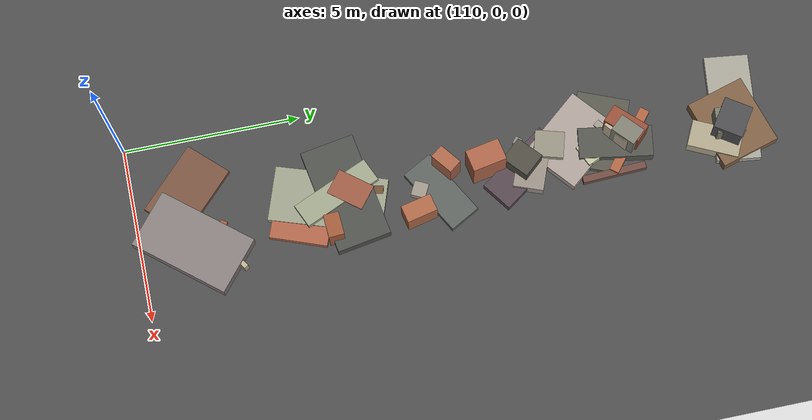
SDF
<sdf version="1.6">
 <world name="navitas_arena">
  <model name="ground_plane">
   <static>true</static>
   <link name="link">
    <collision name="collision">
     <geometry><plane><normal>0 0 1</normal><size>400 400</size></plane></geometry>
     <surface><friction><ode><mu>0.800</mu><mu2>0.800</mu2></ode></friction></surface>
    </collision>
    <visual name="visual">
     <cast_shadows>false</cast_shadows>
     <geometry><plane><normal>0 0 1</normal><size>400 400</size></plane></geometry>
     <material>
      <specular>0.04 0.04 0.04 1</specular>
      <script>
       <uri>file://media/materials/scripts/navitas_asphalt.material</uri>
       <name>Navitas/RealArenaAsphalt</name>
      </script>
     </material>
    </visual>
   </link>
  </model>
  <model name="deb_zor_14">
   <static>true</static>
   <pose>112.383 13.168 0.000 0 0 0</pose>
   <link name="link">
    <collision name="col_0">
     <pose>0.264 0.861 0.137 0.000 0.000 2.471</pose>
     <geometry><box><size>2.047 0.278 0.273</size></box></geometry>
    </collision>
    <visual name="vis_0">
     <pose>0.264 0.861 0.137 0.000 0.000 2.471</pose>
     <geometry><box><size>2.047 0.278 0.273</size></box></geometry>
     <material>
      <ambient>0.64 0.37 0.25 1</ambient>
      <diffuse>0.69 0.40 0.27 1</diffuse>
      <specular>0.05 0.05 0.045 1</specular>
     </material>
    </visual>
    <collision name="col_1">
     <pose>0.555 0.408 0.092 0.000 0.000 1.013</pose>
     <geometry><box><size>0.195 0.268 0.185</size></box></geometry>
    </collision>
    <visual name="vis_1">
     <pose>0.555 0.408 0.092 0.000 0.000 1.013</pose>
     <geometry><box><size>0.195 0.268 0.185</size></box></geometry>
     <material>
      <ambient>0.44 0.42 0.43 1</ambient>
      <diffuse>0.47 0.46 0.46 1</diffuse>
      <specular>0.05 0.05 0.045 1</specular>
     </material>
    </visual>
    <collision name="col_2">
     <pose>-0.056 -0.687 0.148 0.000 0.000 2.267</pose>
     <geometry><box><size>2.184 1.715 0.297</size></box></geometry>
    </collision>
    <visual name="vis_2">
     <pose>-0.056 -0.687 0.148 0.000 0.000 2.267</pose>
     <geometry><box><size>2.184 1.715 0.297</size></box></geometry>
     <material>
      <ambient>0.63 0.59 0.56 1</ambient>
      <diffuse>0.68 0.63 0.60 1</diffuse>
      <specular>0.05 0.05 0.045 1</specular>
     </material>
    </visual>
    <collision name="col_3">
     <pose>-0.182 0.048 0.084 0.000 0.000 2.754</pose>
     <geometry><box><size>2.208 1.504 0.168</size></box></geometry>
    </collision>
    <visual name="vis_3">
     <pose>-0.182 0.048 0.084 0.000 0.000 2.754</pose>
     <geometry><box><size>2.208 1.504 0.168</size></box></geometry>
     <material>
      <ambient>0.32 0.33 0.29 1</ambient>
      <diffuse>0.35 0.35 0.31 1</diffuse>
      <specular>0.05 0.05 0.045 1</specular>
     </material>
    </visual>
    <collision name="col_4">
     <pose>-0.159 0.553 0.104 0.000 0.000 1.071</pose>
     <geometry><box><size>1.217 0.290 0.208</size></box></geometry>
    </collision>
    <visual name="vis_4">
     <pose>-0.159 0.553 0.104 0.000 0.000 1.071</pose>
     <geometry><box><size>1.217 0.290 0.208</size></box></geometry>
     <material>
      <ambient>0.43 0.35 0.27 1</ambient>
      <diffuse>0.47 0.38 0.29 1</diffuse>
      <specular>0.05 0.05 0.045 1</specular>
     </material>
    </visual>
    <collision name="col_5">
     <pose>-0.014 0.350 0.173 0.000 0.000 0.661</pose>
     <geometry><box><size>1.015 0.217 0.345</size></box></geometry>
    </collision>
    <visual name="vis_5">
     <pose>-0.014 0.350 0.173 0.000 0.000 0.661</pose>
     <geometry><box><size>1.015 0.217 0.345</size></box></geometry>
     <material>
      <ambient>0.57 0.56 0.52 1</ambient>
      <diffuse>0.62 0.61 0.56 1</diffuse>
      <specular>0.05 0.05 0.045 1</specular>
     </material>
    </visual>
    <collision name="col_6">
     <pose>1.075 0.239 0.104 0.000 0.000 1.615</pose>
     <geometry><box><size>1.824 0.199 0.208</size></box></geometry>
    </collision>
    <visual name="vis_6">
     <pose>1.075 0.239 0.104 0.000 0.000 1.615</pose>
     <geometry><box><size>1.824 0.199 0.208</size></box></geometry>
     <material>
      <ambient>0.41 0.28 0.25 1</ambient>
      <diffuse>0.44 0.30 0.26 1</diffuse>
      <specular>0.05 0.05 0.045 1</specular>
     </material>
    </visual>
   </link>
  </model>
  <model name="deb_zor_15">
   <static>true</static>
   <pose>112.742 5.090 0.000 0 0 0</pose>
   <link name="link">
    <collision name="col_0">
     <pose>-0.135 0.305 0.099 0.000 0.000 1.245</pose>
     <geometry><box><size>3.197 1.578 0.199</size></box></geometry>
    </collision>
    <visual name="vis_0">
     <pose>-0.135 0.305 0.099 0.000 0.000 1.245</pose>
     <geometry><box><size>3.197 1.578 0.199</size></box></geometry>
     <material>
      <ambient>0.57 0.58 0.50 1</ambient>
      <diffuse>0.61 0.63 0.54 1</diffuse>
      <specular>0.05 0.05 0.045 1</specular>
     </material>
    </visual>
    <collision name="col_1">
     <pose>-0.225 1.238 0.119 0.000 0.000 1.358</pose>
     <geometry><box><size>1.288 0.223 0.238</size></box></geometry>
    </collision>
    <visual name="vis_1">
     <pose>-0.225 1.238 0.119 0.000 0.000 1.358</pose>
     <geometry><box><size>1.288 0.223 0.238</size></box></geometry>
     <material>
      <ambient>0.41 0.29 0.19 1</ambient>
      <diffuse>0.44 0.31 0.21 1</diffuse>
      <specular>0.05 0.05 0.045 1</specular>
     </material>
    </visual>
    <collision name="col_2">
     <pose>-0.236 0.566 0.182 0.000 0.000 1.985</pose>
     <geometry><box><size>2.353 0.710 0.364</size></box></geometry>
    </collision>
    <visual name="vis_2">
     <pose>-0.236 0.566 0.182 0.000 0.000 1.985</pose>
     <geometry><box><size>2.353 0.710 0.364</size></box></geometry>
     <material>
      <ambient>0.58 0.60 0.51 1</ambient>
      <diffuse>0.63 0.65 0.55 1</diffuse>
      <specular>0.05 0.05 0.045 1</specular>
     </material>
    </visual>
    <collision name="col_3">
     <pose>-0.244 0.966 0.187 0.000 0.000 0.905</pose>
     <geometry><box><size>1.088 0.755 0.374</size></box></geometry>
    </collision>
    <visual name="vis_3">
     <pose>-0.244 0.966 0.187 0.000 0.000 0.905</pose>
     <geometry><box><size>1.088 0.755 0.374</size></box></geometry>
     <material>
      <ambient>0.57 0.34 0.25 1</ambient>
      <diffuse>0.62 0.36 0.27 1</diffuse>
      <specular>0.05 0.05 0.045 1</specular>
     </material>
    </visual>
    <collision name="col_4">
     <pose>0.791 0.321 0.415 0.000 0.000 3.202</pose>
     <geometry><box><size>0.668 0.436 0.831</size></box></geometry>
    </collision>
    <visual name="vis_4">
     <pose>0.791 0.321 0.415 0.000 0.000 3.202</pose>
     <geometry><box><size>0.668 0.436 0.831</size></box></geometry>
     <material>
      <ambient>0.58 0.34 0.21 1</ambient>
      <diffuse>0.63 0.36 0.23 1</diffuse>
      <specular>0.05 0.05 0.045 1</specular>
     </material>
    </visual>
    <collision name="col_5">
     <pose>0.494 -0.596 0.089 0.000 0.000 1.213</pose>
     <geometry><box><size>1.643 0.838 0.179</size></box></geometry>
    </collision>
    <visual name="vis_5">
     <pose>0.494 -0.596 0.089 0.000 0.000 1.213</pose>
     <geometry><box><size>1.643 0.838 0.179</size></box></geometry>
     <material>
      <ambient>0.64 0.37 0.27 1</ambient>
      <diffuse>0.69 0.40 0.29 1</diffuse>
      <specular>0.05 0.05 0.045 1</specular>
     </material>
    </visual>
    <collision name="col_6">
     <pose>-0.188 0.810 0.171 0.000 0.000 3.310</pose>
     <geometry><box><size>3.066 1.551 0.341</size></box></geometry>
    </collision>
    <visual name="vis_6">
     <pose>-0.188 0.810 0.171 0.000 0.000 3.310</pose>
     <geometry><box><size>3.066 1.551 0.341</size></box></geometry>
     <material>
      <ambient>0.29 0.30 0.27 1</ambient>
      <diffuse>0.31 0.32 0.30 1</diffuse>
      <specular>0.05 0.05 0.045 1</specular>
     </material>
    </visual>
   </link>
  </model>
  <model name="deb_zor_86">
   <static>true</static>
   <pose>112.617 17.047 0.000 0 0 0</pose>
   <link name="link">
    <collision name="col_0">
     <pose>-0.094 0.372 0.067 0.000 0.000 1.864</pose>
     <geometry><box><size>0.237 0.280 0.135</size></box></geometry>
    </collision>
    <visual name="vis_0">
     <pose>-0.094 0.372 0.067 0.000 0.000 1.864</pose>
     <geometry><box><size>0.237 0.280 0.135</size></box></geometry>
     <material>
      <ambient>0.37 0.33 0.31 1</ambient>
      <diffuse>0.39 0.36 0.33 1</diffuse>
      <specular>0.05 0.05 0.045 1</specular>
     </material>
    </visual>
    <collision name="col_1">
     <pose>0.130 -0.058 0.186 0.000 0.000 3.426</pose>
     <geometry><box><size>2.047 1.721 0.372</size></box></geometry>
    </collision>
    <visual name="vis_1">
     <pose>0.130 -0.058 0.186 0.000 0.000 3.426</pose>
     <geometry><box><size>2.047 1.721 0.372</size></box></geometry>
     <material>
      <ambient>0.46 0.35 0.25 1</ambient>
      <diffuse>0.50 0.38 0.27 1</diffuse>
      <specular>0.05 0.05 0.045 1</specular>
     </material>
    </visual>
    <collision name="col_2">
     <pose>-0.227 -0.123 0.122 0.000 0.000 2.642</pose>
     <geometry><box><size>0.380 0.354 0.243</size></box></geometry>
    </collision>
    <visual name="vis_2">
     <pose>-0.227 -0.123 0.122 0.000 0.000 2.642</pose>
     <geometry><box><size>0.380 0.354 0.243</size></box></geometry>
     <material>
      <ambient>0.66 0.41 0.26 1</ambient>
      <diffuse>0.71 0.44 0.29 1</diffuse>
      <specular>0.05 0.05 0.045 1</specular>
     </material>
    </visual>
    <collision name="col_3">
     <pose>0.238 -0.176 0.571 0.000 0.000 2.547</pose>
     <geometry><box><size>0.932 0.833 1.142</size></box></geometry>
    </collision>
    <visual name="vis_3">
     <pose>0.238 -0.176 0.571 0.000 0.000 2.547</pose>
     <geometry><box><size>0.932 0.833 1.142</size></box></geometry>
     <material>
      <ambient>0.28 0.28 0.29 1</ambient>
      <diffuse>0.30 0.30 0.31 1</diffuse>
      <specular>0.05 0.05 0.045 1</specular>
     </material>
    </visual>
    <collision name="col_4">
     <pose>-0.331 0.069 0.123 0.000 0.000 3.019</pose>
     <geometry><box><size>3.096 1.258 0.245</size></box></geometry>
    </collision>
    <visual name="vis_4">
     <pose>-0.331 0.069 0.123 0.000 0.000 3.019</pose>
     <geometry><box><size>3.096 1.258 0.245</size></box></geometry>
     <material>
      <ambient>0.61 0.60 0.55 1</ambient>
      <diffuse>0.66 0.65 0.60 1</diffuse>
      <specular>0.05 0.05 0.045 1</specular>
     </material>
    </visual>
    <collision name="col_5">
     <pose>0.233 -0.441 0.066 0.000 0.000 2.379</pose>
     <geometry><box><size>0.403 0.197 0.133</size></box></geometry>
    </collision>
    <visual name="vis_5">
     <pose>0.233 -0.441 0.066 0.000 0.000 2.379</pose>
     <geometry><box><size>0.403 0.197 0.133</size></box></geometry>
     <material>
      <ambient>0.67 0.41 0.31 1</ambient>
      <diffuse>0.72 0.45 0.34 1</diffuse>
      <specular>0.05 0.05 0.045 1</specular>
     </material>
    </visual>
    <collision name="col_6">
     <pose>0.224 -0.241 0.486 0.000 0.000 1.474</pose>
     <geometry><box><size>0.787 0.740 0.973</size></box></geometry>
    </collision>
    <visual name="vis_6">
     <pose>0.224 -0.241 0.486 0.000 0.000 1.474</pose>
     <geometry><box><size>0.787 0.740 0.973</size></box></geometry>
     <material>
      <ambient>0.43 0.45 0.38 1</ambient>
      <diffuse>0.47 0.48 0.41 1</diffuse>
      <specular>0.05 0.05 0.045 1</specular>
     </material>
    </visual>
   </link>
  </model>
  <model name="deb_zor_92">
   <static>true</static>
   <pose>112.468 1.633 0.000 0 0 0</pose>
   <link name="link">
    <collision name="col_0">
     <pose>-0.841 -0.138 0.078 0.000 0.000 1.286</pose>
     <geometry><box><size>1.356 0.232 0.156</size></box></geometry>
    </collision>
    <visual name="vis_0">
     <pose>-0.841 -0.138 0.078 0.000 0.000 1.286</pose>
     <geometry><box><size>1.356 0.232 0.156</size></box></geometry>
     <material>
      <ambient>0.49 0.49 0.46 1</ambient>
      <diffuse>0.53 0.53 0.50 1</diffuse>
      <specular>0.05 0.05 0.045 1</specular>
     </material>
    </visual>
    <collision name="col_1">
     <pose>-0.951 -0.066 0.082 0.000 0.000 -0.763</pose>
     <geometry><box><size>2.179 1.390 0.163</size></box></geometry>
    </collision>
    <visual name="vis_1">
     <pose>-0.951 -0.066 0.082 0.000 0.000 -0.763</pose>
     <geometry><box><size>2.179 1.390 0.163</size></box></geometry>
     <material>
      <ambient>0.45 0.31 0.24 1</ambient>
      <diffuse>0.48 0.33 0.26 1</diffuse>
      <specular>0.05 0.05 0.045 1</specular>
     </material>
    </visual>
    <collision name="col_2">
     <pose>0.689 0.557 0.166 0.000 0.000 0.603</pose>
     <geometry><box><size>2.248 0.134 0.332</size></box></geometry>
    </collision>
    <visual name="vis_2">
     <pose>0.689 0.557 0.166 0.000 0.000 0.603</pose>
     <geometry><box><size>2.248 0.134 0.332</size></box></geometry>
     <material>
      <ambient>0.68 0.65 0.53 1</ambient>
      <diffuse>0.74 0.70 0.57 1</diffuse>
      <specular>0.05 0.05 0.045 1</specular>
     </material>
    </visual>
    <collision name="col_3">
     <pose>0.341 0.673 0.070 0.000 0.000 -0.598</pose>
     <geometry><box><size>0.494 0.190 0.139</size></box></geometry>
    </collision>
    <visual name="vis_3">
     <pose>0.341 0.673 0.070 0.000 0.000 -0.598</pose>
     <geometry><box><size>0.494 0.190 0.139</size></box></geometry>
     <material>
      <ambient>0.59 0.34 0.22 1</ambient>
      <diffuse>0.64 0.37 0.23 1</diffuse>
      <specular>0.05 0.05 0.045 1</specular>
     </material>
    </visual>
    <collision name="col_4">
     <pose>0.629 -0.127 0.195 0.000 0.000 0.882</pose>
     <geometry><box><size>2.940 1.698 0.390</size></box></geometry>
    </collision>
    <visual name="vis_4">
     <pose>0.629 -0.127 0.195 0.000 0.000 0.882</pose>
     <geometry><box><size>2.940 1.698 0.390</size></box></geometry>
     <material>
      <ambient>0.49 0.46 0.45 1</ambient>
      <diffuse>0.53 0.50 0.49 1</diffuse>
      <specular>0.05 0.05 0.045 1</specular>
     </material>
    </visual>
   </link>
  </model>
  <model name="deb_zor_182">
   <static>true</static>
   <pose>112.758 16.815 0.000 0 0 0</pose>
   <link name="link">
    <collision name="col_0">
     <pose>0.382 -0.431 0.209 0.000 0.000 1.119</pose>
     <geometry><box><size>1.457 0.774 0.418</size></box></geometry>
    </collision>
    <visual name="vis_0">
     <pose>0.382 -0.431 0.209 0.000 0.000 1.119</pose>
     <geometry><box><size>1.457 0.774 0.418</size></box></geometry>
     <material>
      <ambient>0.64 0.60 0.51 1</ambient>
      <diffuse>0.69 0.65 0.55 1</diffuse>
      <specular>0.05 0.05 0.045 1</specular>
     </material>
    </visual>
    <collision name="col_1">
     <pose>0.004 0.239 0.155 0.000 0.000 3.141</pose>
     <geometry><box><size>1.546 1.158 0.310</size></box></geometry>
    </collision>
    <visual name="vis_1">
     <pose>0.004 0.239 0.155 0.000 0.000 3.141</pose>
     <geometry><box><size>1.546 1.158 0.310</size></box></geometry>
     <material>
      <ambient>0.41 0.28 0.18 1</ambient>
      <diffuse>0.44 0.30 0.19 1</diffuse>
      <specular>0.05 0.05 0.045 1</specular>
     </material>
    </visual>
    <collision name="col_2">
     <pose>0.107 -0.611 0.062 0.000 0.000 2.455</pose>
     <geometry><box><size>0.419 0.196 0.125</size></box></geometry>
    </collision>
    <visual name="vis_2">
     <pose>0.107 -0.611 0.062 0.000 0.000 2.455</pose>
     <geometry><box><size>0.419 0.196 0.125</size></box></geometry>
     <material>
      <ambient>0.66 0.61 0.54 1</ambient>
      <diffuse>0.72 0.66 0.58 1</diffuse>
      <specular>0.05 0.05 0.045 1</specular>
     </material>
    </visual>
    <collision name="col_3">
     <pose>0.027 -0.164 0.063 0.000 0.000 0.870</pose>
     <geometry><box><size>0.279 0.321 0.127</size></box></geometry>
    </collision>
    <visual name="vis_3">
     <pose>0.027 -0.164 0.063 0.000 0.000 0.870</pose>
     <geometry><box><size>0.279 0.321 0.127</size></box></geometry>
     <material>
      <ambient>0.41 0.27 0.22 1</ambient>
      <diffuse>0.45 0.30 0.23 1</diffuse>
      <specular>0.05 0.05 0.045 1</specular>
     </material>
    </visual>
    <collision name="col_4">
     <pose>0.036 -0.053 0.101 0.000 0.000 2.957</pose>
     <geometry><box><size>0.237 0.320 0.201</size></box></geometry>
    </collision>
    <visual name="vis_4">
     <pose>0.036 -0.053 0.101 0.000 0.000 2.957</pose>
     <geometry><box><size>0.237 0.320 0.201</size></box></geometry>
     <material>
      <ambient>0.67 0.63 0.53 1</ambient>
      <diffuse>0.72 0.68 0.57 1</diffuse>
      <specular>0.05 0.05 0.045 1</specular>
     </material>
    </visual>
   </link>
  </model>
  <model name="deb_zor_216">
   <static>true</static>
   <pose>112.762 8.185 0.000 0 0 0</pose>
   <link name="link">
    <collision name="col_0">
     <pose>-0.410 0.625 0.484 0.000 0.000 3.795</pose>
     <geometry><box><size>0.699 0.415 0.967</size></box></geometry>
    </collision>
    <visual name="vis_0">
     <pose>-0.410 0.625 0.484 0.000 0.000 3.795</pose>
     <geometry><box><size>0.699 0.415 0.967</size></box></geometry>
     <material>
      <ambient>0.63 0.38 0.28 1</ambient>
      <diffuse>0.68 0.41 0.30 1</diffuse>
      <specular>0.05 0.05 0.045 1</specular>
     </material>
    </visual>
    <collision name="col_1">
     <pose>0.262 0.338 0.098 0.000 0.000 3.649</pose>
     <geometry><box><size>2.090 0.930 0.196</size></box></geometry>
    </collision>
    <visual name="vis_1">
     <pose>0.262 0.338 0.098 0.000 0.000 3.649</pose>
     <geometry><box><size>2.090 0.930 0.196</size></box></geometry>
     <material>
      <ambient>0.34 0.36 0.34 1</ambient>
      <diffuse>0.37 0.39 0.37 1</diffuse>
      <specular>0.05 0.05 0.045 1</specular>
     </material>
    </visual>
    <collision name="col_2">
     <pose>0.090 -0.224 0.122 0.000 0.000 2.667</pose>
     <geometry><box><size>0.431 0.410 0.244</size></box></geometry>
    </collision>
    <visual name="vis_2">
     <pose>0.090 -0.224 0.122 0.000 0.000 2.667</pose>
     <geometry><box><size>0.431 0.410 0.244</size></box></geometry>
     <material>
      <ambient>0.58 0.55 0.50 1</ambient>
      <diffuse>0.62 0.59 0.54 1</diffuse>
      <specular>0.05 0.05 0.045 1</specular>
     </material>
    </visual>
    <collision name="col_3">
     <pose>0.772 -0.377 0.380 0.000 0.000 3.362</pose>
     <geometry><box><size>0.504 0.883 0.759</size></box></geometry>
    </collision>
    <visual name="vis_3">
     <pose>0.772 -0.377 0.380 0.000 0.000 3.362</pose>
     <geometry><box><size>0.504 0.883 0.759</size></box></geometry>
     <material>
      <ambient>0.63 0.38 0.26 1</ambient>
      <diffuse>0.68 0.41 0.28 1</diffuse>
      <specular>0.05 0.05 0.045 1</specular>
     </material>
    </visual>
   </link>
  </model>
  <model name="deb_zor_248">
   <static>true</static>
   <pose>112.624 10.990 0.000 0 0 0</pose>
   <link name="link">
    <collision name="col_0">
     <pose>0.210 -0.037 0.130 0.000 0.000 2.188</pose>
     <geometry><box><size>2.323 0.959 0.260</size></box></geometry>
    </collision>
    <visual name="vis_0">
     <pose>0.210 -0.037 0.130 0.000 0.000 2.188</pose>
     <geometry><box><size>2.323 0.959 0.260</size></box></geometry>
     <material>
      <ambient>0.31 0.26 0.28 1</ambient>
      <diffuse>0.34 0.28 0.31 1</diffuse>
      <specular>0.05 0.05 0.045 1</specular>
     </material>
    </visual>
    <collision name="col_1">
     <pose>-0.601 -0.057 0.115 0.000 0.000 4.010</pose>
     <geometry><box><size>0.196 0.230 0.230</size></box></geometry>
    </collision>
    <visual name="vis_1">
     <pose>-0.601 -0.057 0.115 0.000 0.000 4.010</pose>
     <geometry><box><size>0.196 0.230 0.230</size></box></geometry>
     <material>
      <ambient>0.52 0.50 0.49 1</ambient>
      <diffuse>0.56 0.54 0.53 1</diffuse>
      <specular>0.05 0.05 0.045 1</specular>
     </material>
    </visual>
    <collision name="col_2">
     <pose>-0.435 0.892 0.125 0.000 0.000 1.821</pose>
     <geometry><box><size>0.215 0.347 0.250</size></box></geometry>
    </collision>
    <visual name="vis_2">
     <pose>-0.435 0.892 0.125 0.000 0.000 1.821</pose>
     <geometry><box><size>0.215 0.347 0.250</size></box></geometry>
     <material>
      <ambient>0.45 0.43 0.40 1</ambient>
      <diffuse>0.48 0.47 0.43 1</diffuse>
      <specular>0.05 0.05 0.045 1</specular>
     </material>
    </visual>
    <collision name="col_3">
     <pose>-0.261 0.774 0.242 0.000 0.000 4.431</pose>
     <geometry><box><size>0.839 0.765 0.483</size></box></geometry>
    </collision>
    <visual name="vis_3">
     <pose>-0.261 0.774 0.242 0.000 0.000 4.431</pose>
     <geometry><box><size>0.839 0.765 0.483</size></box></geometry>
     <material>
      <ambient>0.55 0.53 0.47 1</ambient>
      <diffuse>0.59 0.57 0.51 1</diffuse>
      <specular>0.05 0.05 0.045 1</specular>
     </material>
    </visual>
    <collision name="col_4">
     <pose>0.375 0.111 0.176 0.000 0.000 2.776</pose>
     <geometry><box><size>1.011 0.862 0.351</size></box></geometry>
    </collision>
    <visual name="vis_4">
     <pose>0.375 0.111 0.176 0.000 0.000 2.776</pose>
     <geometry><box><size>1.011 0.862 0.351</size></box></geometry>
     <material>
      <ambient>0.56 0.52 0.48 1</ambient>
      <diffuse>0.60 0.56 0.52 1</diffuse>
      <specular>0.05 0.05 0.045 1</specular>
     </material>
    </visual>
    <collision name="col_5">
     <pose>-0.093 -1.087 0.586 0.000 0.000 3.328</pose>
     <geometry><box><size>0.629 0.976 1.172</size></box></geometry>
    </collision>
    <visual name="vis_5">
     <pose>-0.093 -1.087 0.586 0.000 0.000 3.328</pose>
     <geometry><box><size>0.629 0.976 1.172</size></box></geometry>
     <material>
      <ambient>0.63 0.37 0.27 1</ambient>
      <diffuse>0.68 0.40 0.29 1</diffuse>
      <specular>0.05 0.05 0.045 1</specular>
     </material>
    </visual>
    <collision name="col_6">
     <pose>0.057 -0.074 0.393 0.000 0.000 3.867</pose>
     <geometry><box><size>0.834 0.735 0.785</size></box></geometry>
    </collision>
    <visual name="vis_6">
     <pose>0.057 -0.074 0.393 0.000 0.000 3.867</pose>
     <geometry><box><size>0.834 0.735 0.785</size></box></geometry>
     <material>
      <ambient>0.29 0.28 0.24 1</ambient>
      <diffuse>0.31 0.30 0.26 1</diffuse>
      <specular>0.05 0.05 0.045 1</specular>
     </material>
    </visual>
   </link>
  </model>
  <model name="deb_zor_374">
   <static>true</static>
   <pose>112.731 13.616 0.000 0 0 0</pose>
   <link name="link">
    <collision name="col_0">
     <pose>-0.039 0.170 0.091 0.000 0.000 2.984</pose>
     <geometry><box><size>0.265 0.466 0.182</size></box></geometry>
    </collision>
    <visual name="vis_0">
     <pose>-0.039 0.170 0.091 0.000 0.000 2.984</pose>
     <geometry><box><size>0.265 0.466 0.182</size></box></geometry>
     <material>
      <ambient>0.44 0.42 0.38 1</ambient>
      <diffuse>0.48 0.45 0.41 1</diffuse>
      <specular>0.05 0.05 0.045 1</specular>
     </material>
    </visual>
    <collision name="col_1">
     <pose>-0.237 0.138 0.546 0.000 0.000 2.235</pose>
     <geometry><box><size>0.487 0.810 1.092</size></box></geometry>
    </collision>
    <visual name="vis_1">
     <pose>-0.237 0.138 0.546 0.000 0.000 2.235</pose>
     <geometry><box><size>0.487 0.810 1.092</size></box></geometry>
     <material>
      <ambient>0.70 0.65 0.56 1</ambient>
      <diffuse>0.75 0.70 0.61 1</diffuse>
      <specular>0.05 0.05 0.045 1</specular>
     </material>
    </visual>
    <collision name="col_2">
     <pose>-0.104 0.288 0.605 0.000 0.000 2.302</pose>
     <geometry><box><size>0.527 0.746 1.209</size></box></geometry>
    </collision>
    <visual name="vis_2">
     <pose>-0.104 0.288 0.605 0.000 0.000 2.302</pose>
     <geometry><box><size>0.527 0.746 1.209</size></box></geometry>
     <material>
      <ambient>0.46 0.46 0.42 1</ambient>
      <diffuse>0.50 0.50 0.45 1</diffuse>
      <specular>0.05 0.05 0.045 1</specular>
     </material>
    </visual>
    <collision name="col_3">
     <pose>-0.049 -0.547 0.188 0.000 0.000 0.420</pose>
     <geometry><box><size>0.633 0.995 0.376</size></box></geometry>
    </collision>
    <visual name="vis_3">
     <pose>-0.049 -0.547 0.188 0.000 0.000 0.420</pose>
     <geometry><box><size>0.633 0.995 0.376</size></box></geometry>
     <material>
      <ambient>0.70 0.70 0.58 1</ambient>
      <diffuse>0.76 0.76 0.63 1</diffuse>
      <specular>0.05 0.05 0.045 1</specular>
     </material>
    </visual>
    <collision name="col_4">
     <pose>-0.336 0.134 0.108 0.000 0.000 2.711</pose>
     <geometry><box><size>0.240 0.374 0.216</size></box></geometry>
    </collision>
    <visual name="vis_4">
     <pose>-0.336 0.134 0.108 0.000 0.000 2.711</pose>
     <geometry><box><size>0.240 0.374 0.216</size></box></geometry>
     <material>
      <ambient>0.60 0.59 0.53 1</ambient>
      <diffuse>0.65 0.63 0.57 1</diffuse>
      <specular>0.05 0.05 0.045 1</specular>
     </material>
    </visual>
    <collision name="col_5">
     <pose>-0.072 -0.007 0.202 0.000 0.000 1.409</pose>
     <geometry><box><size>2.092 0.889 0.404</size></box></geometry>
    </collision>
    <visual name="vis_5">
     <pose>-0.072 -0.007 0.202 0.000 0.000 1.409</pose>
     <geometry><box><size>2.092 0.889 0.404</size></box></geometry>
     <material>
      <ambient>0.31 0.30 0.28 1</ambient>
      <diffuse>0.33 0.33 0.31 1</diffuse>
      <specular>0.05 0.05 0.045 1</specular>
     </material>
    </visual>
    <collision name="col_6">
     <pose>-0.308 0.293 0.586 0.000 0.000 0.789</pose>
     <geometry><box><size>1.113 0.549 1.172</size></box></geometry>
    </collision>
    <visual name="vis_6">
     <pose>-0.308 0.293 0.586 0.000 0.000 0.789</pose>
     <geometry><box><size>1.113 0.549 1.172</size></box></geometry>
     <material>
      <ambient>0.55 0.29 0.20 1</ambient>
      <diffuse>0.59 0.31 0.22 1</diffuse>
      <specular>0.05 0.05 0.045 1</specular>
     </material>
    </visual>
   </link>
  </model>
 </world>
</sdf>
